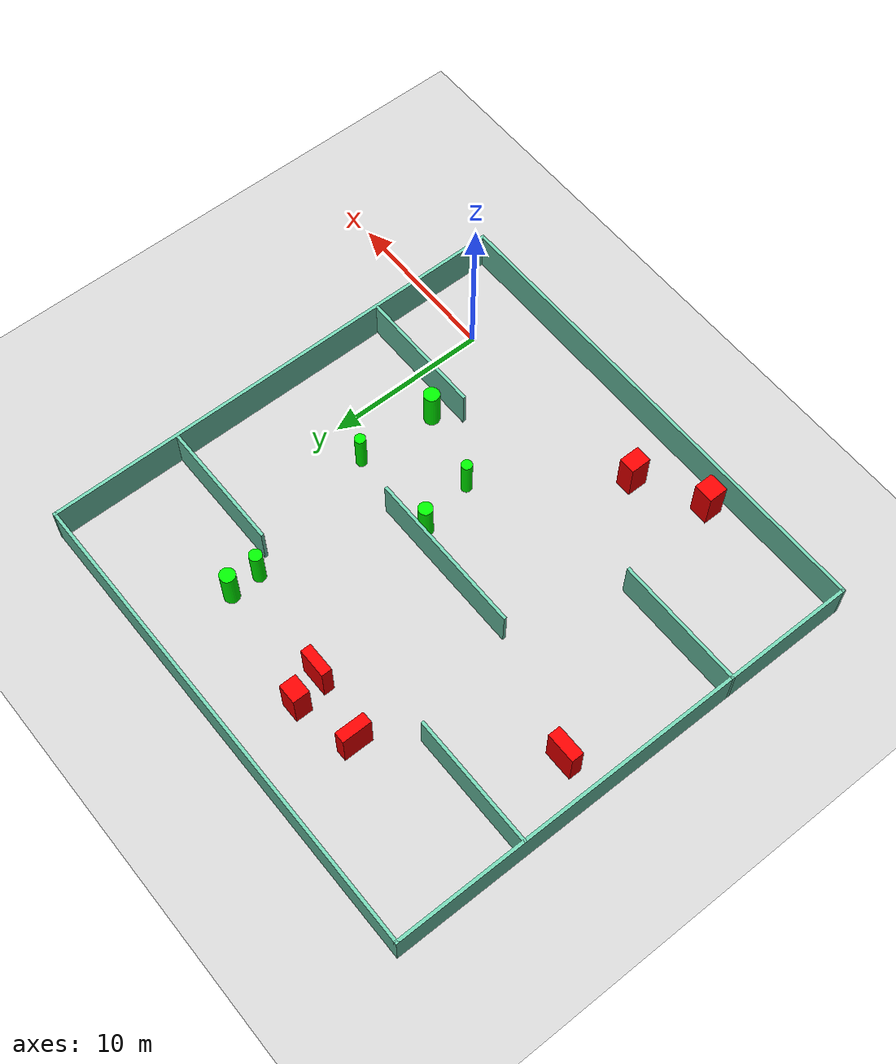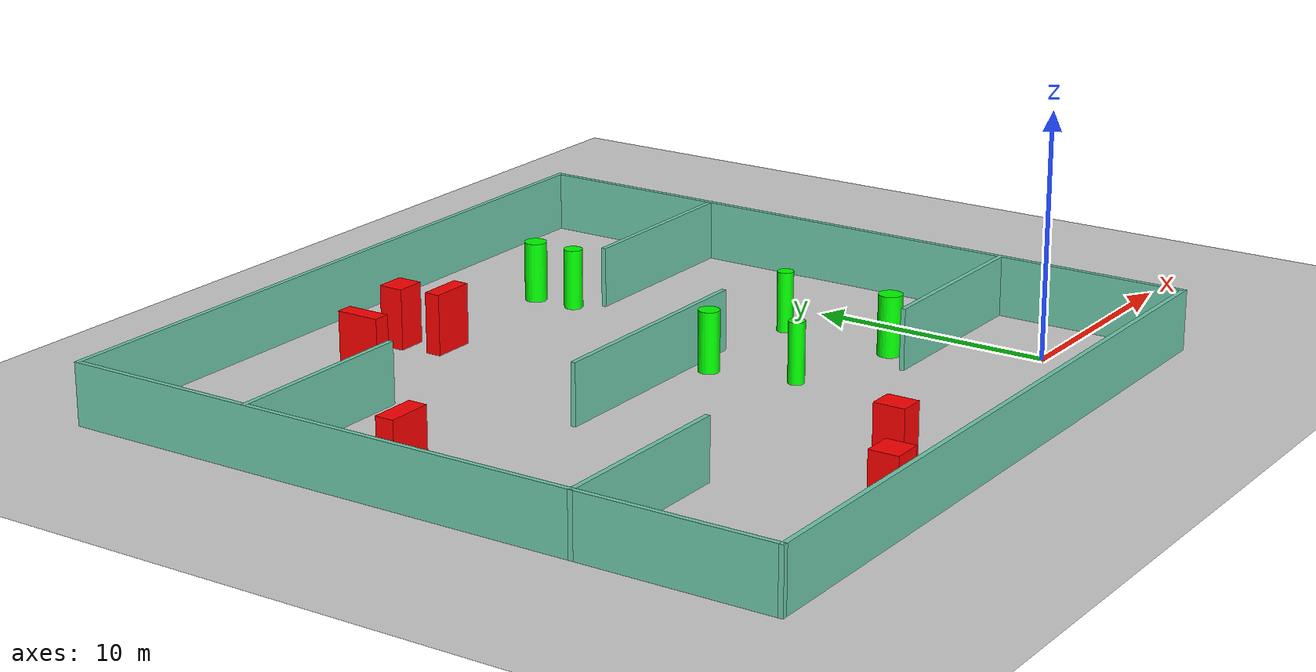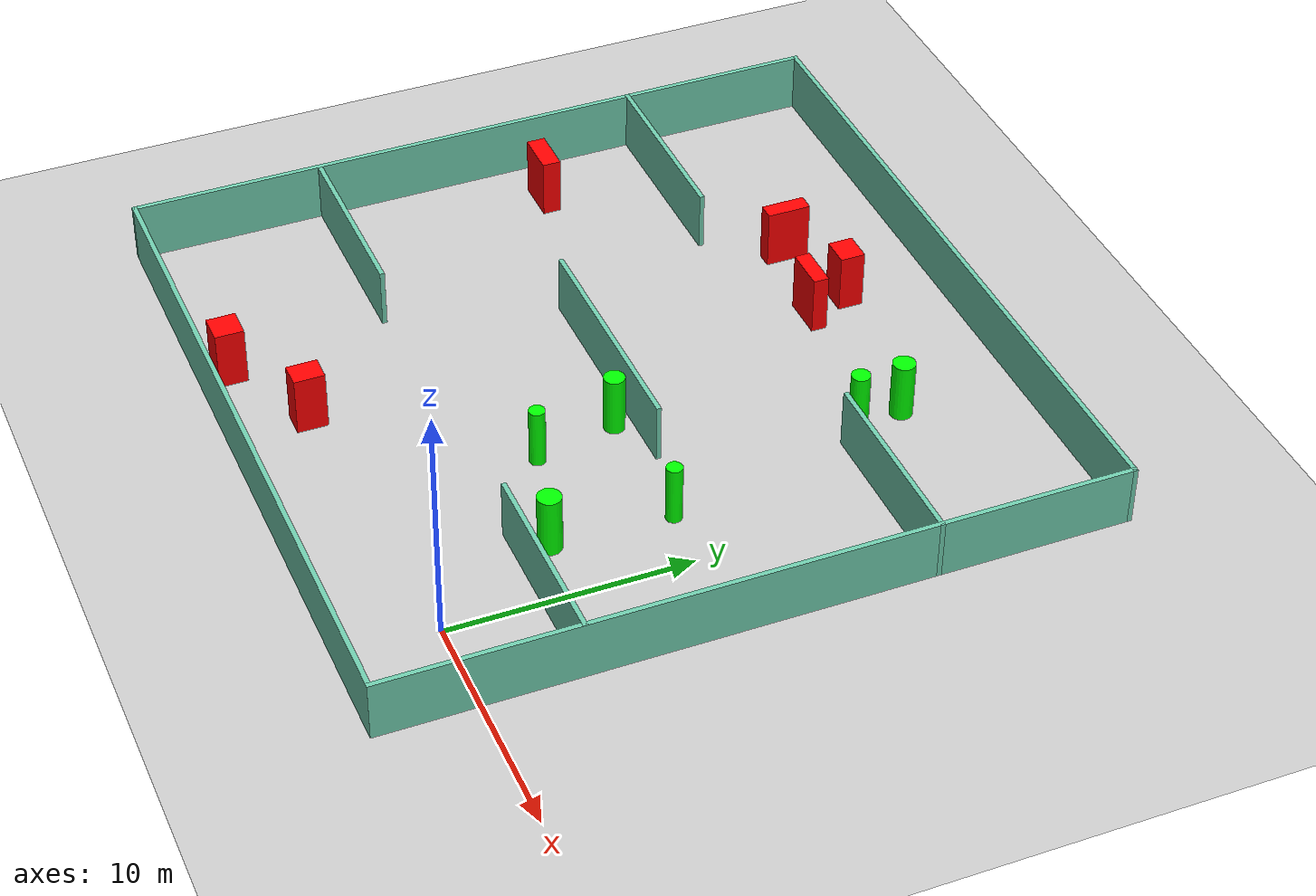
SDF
<sdf version="1.7">
 <world name="default">
  <light name="sun" type="directional">
   <pose>0 0 10 0 -0 0</pose>
   <diffuse>0.8 0.8 0.8 1</diffuse>
   <specular>0.2 0.2 0.2 1</specular>
   <attenuation>
    <range>1000</range>
    <constant>0.9</constant>
    <linear>0.01</linear>
    <quadratic>0.001</quadratic>
   </attenuation>
   <direction>-0.5 0.1 -0.9</direction>
   <spot><inner_angle>0</inner_angle><outer_angle>0</outer_angle><falloff>0</falloff></spot>
  </light>
  <model name="ground_plane">
   <static>1</static>
   <link name="link">
    <collision name="collision">
     <geometry><plane><normal>0 0 1</normal><size>100 100</size></plane></geometry>
     <surface>
      <contact><collide_bitmask>65535</collide_bitmask></contact>
      <friction><ode><mu>100</mu><mu2>50</mu2></ode></friction>
     </surface>
    </collision>
    <visual name="visual">
     <cast_shadows>0</cast_shadows>
     <geometry><plane><normal>0 0 1</normal><size>100 100</size></plane></geometry>
     <material>
      <script><uri>file://media/materials/scripts/gazebo.material</uri><name>Gazebo/Grey</name></script>
     </material>
    </visual>
   </link>
  </model>
  <gravity>0 0 -9.8</gravity>
  <magnetic_field>6e-06 2.3e-05 -4.2e-05</magnetic_field>
  <atmosphere type="adiabatic"/>
  <physics type="ode">
   <max_step_size>0.001</max_step_size>
   <real_time_factor>1</real_time_factor>
   <real_time_update_rate>1000</real_time_update_rate>
  </physics>
  <scene><ambient>0.4 0.4 0.4 1</ambient><background>0.7 0.7 0.7 1</background><shadows>1</shadows></scene>
  <spherical_coordinates>
   <surface_model>EARTH_WGS84</surface_model>
   <latitude_deg>0</latitude_deg>
   <longitude_deg>0</longitude_deg>
   <elevation>0</elevation>
   <heading_deg>0</heading_deg>
  </spherical_coordinates>
  <model name="my_base_walls">
   <link name="Wall_10">
    <collision name="Wall_10_Collision">
     <geometry><box><size>8.2 0.2 2.5</size></box></geometry>
     <pose>0 0 1.25 0 -0 0</pose>
    </collision>
    <visual name="Wall_10_Visual">
     <pose>0 0 1.25 0 -0 0</pose>
     <geometry><box><size>8.2 0.2 2.5</size></box></geometry>
     <material>
      <script><uri>file://media/materials/scripts/gazebo.material</uri><name>Gazebo/Grey</name></script>
      <ambient>0.435294 0.796078 0.67451 1</ambient>
     </material>
     <meta><layer>0</layer></meta>
    </visual>
    <pose>-11 -7 0 0 -0 0</pose>
   </link>
   <link name="Wall_12">
    <collision name="Wall_12_Collision">
     <geometry><box><size>8.2 0.2 2.5</size></box></geometry>
     <pose>0 0 1.25 0 -0 0</pose>
    </collision>
    <visual name="Wall_12_Visual">
     <pose>0 0 1.25 0 -0 0</pose>
     <geometry><box><size>8.2 0.2 2.5</size></box></geometry>
     <material>
      <script><uri>file://media/materials/scripts/gazebo.material</uri><name>Gazebo/Grey</name></script>
      <ambient>0.435294 0.796078 0.67451 1</ambient>
     </material>
     <meta><layer>0</layer></meta>
    </visual>
    <pose>-11 7 0 0 -0 0</pose>
   </link>
   <link name="Wall_14">
    <collision name="Wall_14_Collision">
     <geometry><box><size>8.2 0.2 2.5</size></box></geometry>
     <pose>0 0 1.25 0 -0 0</pose>
    </collision>
    <visual name="Wall_14_Visual">
     <pose>0 0 1.25 0 -0 0</pose>
     <geometry><box><size>8.2 0.2 2.5</size></box></geometry>
     <material>
      <script><uri>file://media/materials/scripts/gazebo.material</uri><name>Gazebo/Grey</name></script>
      <ambient>0.435294 0.796078 0.67451 1</ambient>
     </material>
     <meta><layer>0</layer></meta>
    </visual>
    <pose>11 7 0 0 -0 3.14159</pose>
   </link>
   <link name="Wall_16">
    <collision name="Wall_16_Collision">
     <geometry><box><size>10.2 0.2 2.5</size></box></geometry>
     <pose>0 0 1.25 0 -0 0</pose>
    </collision>
    <visual name="Wall_16_Visual">
     <pose>0 0 1.25 0 -0 0</pose>
     <geometry><box><size>10.2 0.2 2.5</size></box></geometry>
     <material>
      <script><uri>file://media/materials/scripts/gazebo.material</uri><name>Gazebo/Grey</name></script>
      <ambient>0.435294 0.796078 0.67451 1</ambient>
     </material>
     <meta><layer>0</layer></meta>
    </visual>
    <pose>0 0 0 0 -0 3.14159</pose>
   </link>
   <link name="Wall_2">
    <collision name="Wall_2_Collision">
     <geometry><box><size>30.2 0.2 2.5</size></box></geometry>
     <pose>0 0 1.25 0 -0 0</pose>
    </collision>
    <visual name="Wall_2_Visual">
     <pose>0 0 1.25 0 -0 0</pose>
     <geometry><box><size>30.2 0.2 2.5</size></box></geometry>
     <material>
      <script><uri>file://media/materials/scripts/gazebo.material</uri><name>Gazebo/Grey</name></script>
      <ambient>0.435294 0.796078 0.67451 1</ambient>
     </material>
     <meta><layer>0</layer></meta>
    </visual>
    <pose>0 -15 0 0 -0 3.14159</pose>
   </link>
   <link name="Wall_3">
    <collision name="Wall_3_Collision">
     <geometry><box><size>30.2 0.2 2.5</size></box></geometry>
     <pose>0 0 1.25 0 -0 0</pose>
    </collision>
    <visual name="Wall_3_Visual">
     <pose>0 0 1.25 0 -0 0</pose>
     <geometry><box><size>30.2 0.2 2.5</size></box></geometry>
     <material>
      <script><uri>file://media/materials/scripts/gazebo.material</uri><name>Gazebo/Grey</name></script>
      <ambient>0.435294 0.796078 0.67451 1</ambient>
     </material>
     <meta><layer>0</layer></meta>
    </visual>
    <pose>-15 0 0 0 -0 1.5708</pose>
   </link>
   <link name="Wall_4">
    <collision name="Wall_4_Collision">
     <geometry><box><size>30.2 0.2 2.5</size></box></geometry>
     <pose>0 0 1.25 0 -0 0</pose>
    </collision>
    <visual name="Wall_4_Visual">
     <pose>0 0 1.25 0 -0 0</pose>
     <geometry><box><size>30.2 0.2 2.5</size></box></geometry>
     <material>
      <script><uri>file://media/materials/scripts/gazebo.material</uri><name>Gazebo/Grey</name></script>
      <ambient>0.435294 0.796078 0.67451 1</ambient>
     </material>
     <meta><layer>0</layer></meta>
    </visual>
    <pose>0 15 0 0 -0 0</pose>
   </link>
   <link name="Wall_6">
    <collision name="Wall_6_Collision">
     <geometry><box><size>30.2 0.2 2.5</size></box></geometry>
     <pose>0 0 1.25 0 -0 0</pose>
    </collision>
    <visual name="Wall_6_Visual">
     <pose>0 0 1.25 0 -0 0</pose>
     <geometry><box><size>30.2 0.2 2.5</size></box></geometry>
     <material>
      <script><uri>file://media/materials/scripts/gazebo.material</uri><name>Gazebo/Grey</name></script>
      <ambient>0.435294 0.796078 0.67451 1</ambient>
     </material>
     <meta><layer>0</layer></meta>
    </visual>
    <pose>15 0 0 0 -0 1.5708</pose>
   </link>
   <link name="Wall_8">
    <collision name="Wall_8_Collision">
     <geometry><box><size>8.2 0.2 2.5</size></box></geometry>
     <pose>0 0 1.25 0 -0 0</pose>
    </collision>
    <visual name="Wall_8_Visual">
     <pose>0 0 1.25 0 -0 0</pose>
     <geometry><box><size>8.2 0.2 2.5</size></box></geometry>
     <material>
      <script><uri>file://media/materials/scripts/gazebo.material</uri><name>Gazebo/Grey</name></script>
      <ambient>0.435294 0.796078 0.67451 1</ambient>
     </material>
     <meta><layer>0</layer></meta>
    </visual>
    <pose>11 -7 0 0 -0 3.14159</pose>
   </link>
   <static>1</static>
   <pose>-11 11 0 0 -0 0</pose>
  </model>
  <model name="cylinder1">
   <static>1</static>
   <link name="link">
    <inertial>
     <mass>1</mass>
     <inertia><ixx>0.5</ixx><ixy>0</ixy><ixz>0</ixz><iyy>0.5</iyy><iyz>0</iyz><izz>1</izz></inertia>
    </inertial>
    <collision name="collision">
     <geometry><cylinder><radius>0.430714673135869</radius><length>2.5</length></cylinder></geometry>
    </collision>
    <visual name="visual">
     <geometry><cylinder><radius>0.430714673135869</radius><length>2.5</length></cylinder></geometry>
     <material>
      <ambient>0 1 0 1</ambient>
      <diffuse>0 1 0 1</diffuse>
      <specular>0.1 0.1 0.1 1</specular>
      <emissive>0 0 0 0</emissive>
     </material>
    </visual>
   </link>
   <pose>-8.296325689861483 10.142618996675436 1.25 0 0 0</pose>
  </model>
  <model name="cylinder2">
   <static>1</static>
   <link name="link">
    <inertial>
     <mass>1</mass>
     <inertia><ixx>0.5</ixx><ixy>0</ixy><ixz>0</ixz><iyy>0.5</iyy><iyz>0</iyz><izz>1</izz></inertia>
    </inertial>
    <collision name="collision">
     <geometry><cylinder><radius>0.3901224387275069</radius><length>2.5</length></cylinder></geometry>
    </collision>
    <visual name="visual">
     <geometry><cylinder><radius>0.3901224387275069</radius><length>2.5</length></cylinder></geometry>
     <material>
      <ambient>0 1 0 1</ambient>
      <diffuse>0 1 0 1</diffuse>
      <specular>0.1 0.1 0.1 1</specular>
      <emissive>0 0 0 0</emissive>
     </material>
    </visual>
   </link>
   <pose>-4.836688452153972 19.006875782045817 1.25 0 0 0</pose>
  </model>
  <model name="cylinder3">
   <static>1</static>
   <link name="link">
    <inertial>
     <mass>1</mass>
     <inertia><ixx>0.5</ixx><ixy>0</ixy><ixz>0</ixz><iyy>0.5</iyy><iyz>0</iyz><izz>1</izz></inertia>
    </inertial>
    <collision name="collision">
     <geometry><cylinder><radius>0.3314901832001767</radius><length>2.5</length></cylinder></geometry>
    </collision>
    <visual name="visual">
     <geometry><cylinder><radius>0.3314901832001767</radius><length>2.5</length></cylinder></geometry>
     <material>
      <ambient>0 1 0 1</ambient>
      <diffuse>0 1 0 1</diffuse>
      <specular>0.1 0.1 0.1 1</specular>
      <emissive>0 0 0 0</emissive>
     </material>
    </visual>
   </link>
   <pose>-7.561499227406589 6.6560649441408515 1.25 0 0 0</pose>
  </model>
  <model name="cylinder4">
   <static>1</static>
   <link name="link">
    <inertial>
     <mass>1</mass>
     <inertia><ixx>0.5</ixx><ixy>0</ixy><ixz>0</ixz><iyy>0.5</iyy><iyz>0</iyz><izz>1</izz></inertia>
    </inertial>
    <collision name="collision">
     <geometry><cylinder><radius>0.3310916273674503</radius><length>2.5</length></cylinder></geometry>
    </collision>
    <visual name="visual">
     <geometry><cylinder><radius>0.3310916273674503</radius><length>2.5</length></cylinder></geometry>
     <material>
      <ambient>0 1 0 1</ambient>
      <diffuse>0 1 0 1</diffuse>
      <specular>0.1 0.1 0.1 1</specular>
      <emissive>0 0 0 0</emissive>
     </material>
    </visual>
   </link>
   <pose>-2.5508055192794075 10.215665687131304 1.25 0 0 0</pose>
  </model>
  <model name="cylinder5">
   <static>1</static>
   <link name="link">
    <inertial>
     <mass>1</mass>
     <inertia><ixx>0.5</ixx><ixy>0</ixy><ixz>0</ixz><iyy>0.5</iyy><iyz>0</iyz><izz>1</izz></inertia>
    </inertial>
    <collision name="collision">
     <geometry><cylinder><radius>0.46626308848923737</radius><length>2.5</length></cylinder></geometry>
    </collision>
    <visual name="visual">
     <geometry><cylinder><radius>0.46626308848923737</radius><length>2.5</length></cylinder></geometry>
     <material>
      <ambient>0 1 0 1</ambient>
      <diffuse>0 1 0 1</diffuse>
      <specular>0.1 0.1 0.1 1</specular>
      <emissive>0 0 0 0</emissive>
     </material>
    </visual>
   </link>
   <pose>-4.872039094102641 20.877180428344552 1.25 0 0 0</pose>
  </model>
  <model name="cylinder6">
   <static>1</static>
   <link name="link">
    <inertial>
     <mass>1</mass>
     <inertia><ixx>0.5</ixx><ixy>0</ixy><ixz>0</ixz><iyy>0.5</iyy><iyz>0</iyz><izz>1</izz></inertia>
    </inertial>
    <collision name="collision">
     <geometry><cylinder><radius>0.4862980631799697</radius><length>2.5</length></cylinder></geometry>
    </collision>
    <visual name="visual">
     <geometry><cylinder><radius>0.4862980631799697</radius><length>2.5</length></cylinder></geometry>
     <material>
      <ambient>0 1 0 1</ambient>
      <diffuse>0 1 0 1</diffuse>
      <specular>0.1 0.1 0.1 1</specular>
      <emissive>0 0 0 0</emissive>
     </material>
    </visual>
   </link>
   <pose>-2.7601442058825576 5.297071369609027 1.25 0 0 0</pose>
  </model>
  <model name="box1">
   <static>1</static>
   <link name="link">
    <inertial>
     <mass>1</mass>
     <inertia><ixx>0.083</ixx><ixy>0</ixy><ixz>0</ixz><iyy>0.083</iyy><iyz>0</iyz><izz>0.083</izz></inertia>
    </inertial>
    <collision name="collision">
     <geometry><box><size>1.8367462959910017 0.6516578244023351 2.5</size></box></geometry>
    </collision>
    <visual name="visual">
     <geometry><box><size>1.8367462959910017 0.6516578244023351 2.5</size></box></geometry>
     <material>
      <ambient>1 0 0 1</ambient>
      <diffuse>1 0 0 1</diffuse>
      <specular>0.1 0.1 0.1 1</specular>
      <emissive>0 0 0 0</emissive>
     </material>
    </visual>
    <sensor name="my_contact" type="contact">
     <contact><collision>box_collision</collision><topic>__default_topic__</topic></contact>
    </sensor>
   </link>
   <pose>-11.788932078315728 20.156538149235104 1.25 0 0 0</pose>
  </model>
  <model name="box2">
   <static>1</static>
   <link name="link">
    <inertial>
     <mass>1</mass>
     <inertia><ixx>0.083</ixx><ixy>0</ixy><ixz>0</ixz><iyy>0.083</iyy><iyz>0</iyz><izz>0.083</izz></inertia>
    </inertial>
    <collision name="collision">
     <geometry><box><size>1.0386812272232604 1.277023754170182 2.5</size></box></geometry>
    </collision>
    <visual name="visual">
     <geometry><box><size>1.0386812272232604 1.277023754170182 2.5</size></box></geometry>
     <material>
      <ambient>1 0 0 1</ambient>
      <diffuse>1 0 0 1</diffuse>
      <specular>0.1 0.1 0.1 1</specular>
      <emissive>0 0 0 0</emissive>
     </material>
    </visual>
    <sensor name="my_contact" type="contact">
     <contact><collision>box_collision</collision><topic>__default_topic__</topic></contact>
    </sensor>
   </link>
   <pose>-13.127452932144553 -0.7646179055474311 1.25 0 0 0</pose>
  </model>
  <model name="box3">
   <static>1</static>
   <link name="link">
    <inertial>
     <mass>1</mass>
     <inertia><ixx>0.083</ixx><ixy>0</ixy><ixz>0</ixz><iyy>0.083</iyy><iyz>0</iyz><izz>0.083</izz></inertia>
    </inertial>
    <collision name="collision">
     <geometry><box><size>0.693406082511048 1.840372600872986 2.5</size></box></geometry>
    </collision>
    <visual name="visual">
     <geometry><box><size>0.693406082511048 1.840372600872986 2.5</size></box></geometry>
     <material>
      <ambient>1 0 0 1</ambient>
      <diffuse>1 0 0 1</diffuse>
      <specular>0.1 0.1 0.1 1</specular>
      <emissive>0 0 0 0</emissive>
     </material>
    </visual>
    <sensor name="my_contact" type="contact">
     <contact><collision>box_collision</collision><topic>__default_topic__</topic></contact>
    </sensor>
   </link>
   <pose>-15.96258107551039 20.93223834700572 1.25 0 0 0</pose>
  </model>
  <model name="box4">
   <static>1</static>
   <link name="link">
    <inertial>
     <mass>1</mass>
     <inertia><ixx>0.083</ixx><ixy>0</ixy><ixz>0</ixz><iyy>0.083</iyy><iyz>0</iyz><izz>0.083</izz></inertia>
    </inertial>
    <collision name="collision">
     <geometry><box><size>1.2245849829576776 1.1981284754560966 2.5</size></box></geometry>
    </collision>
    <visual name="visual">
     <geometry><box><size>1.2245849829576776 1.1981284754560966 2.5</size></box></geometry>
     <material>
      <ambient>1 0 0 1</ambient>
      <diffuse>1 0 0 1</diffuse>
      <specular>0.1 0.1 0.1 1</specular>
      <emissive>0 0 0 0</emissive>
     </material>
    </visual>
    <sensor name="my_contact" type="contact">
     <contact><collision>box_collision</collision><topic>__default_topic__</topic></contact>
    </sensor>
   </link>
   <pose>-17.049098122257032 -2.81379113651698 1.25 0 0 0</pose>
  </model>
  <model name="box5">
   <static>1</static>
   <link name="link">
    <inertial>
     <mass>1</mass>
     <inertia><ixx>0.083</ixx><ixy>0</ixy><ixz>0</ixz><iyy>0.083</iyy><iyz>0</iyz><izz>0.083</izz></inertia>
    </inertial>
    <collision name="collision">
     <geometry><box><size>1.872227752955663 0.7743093998621794 2.5</size></box></geometry>
    </collision>
    <visual name="visual">
     <geometry><box><size>1.872227752955663 0.7743093998621794 2.5</size></box></geometry>
     <material>
      <ambient>1 0 0 1</ambient>
      <diffuse>1 0 0 1</diffuse>
      <specular>0.1 0.1 0.1 1</specular>
      <emissive>0 0 0 0</emissive>
     </material>
    </visual>
    <sensor name="my_contact" type="contact">
     <contact><collision>box_collision</collision><topic>__default_topic__</topic></contact>
    </sensor>
   </link>
   <pose>-23.415608492962164 13.094970014128293 1.25 0 0 0</pose>
  </model>
  <model name="box6">
   <static>1</static>
   <link name="link">
    <inertial>
     <mass>1</mass>
     <inertia><ixx>0.083</ixx><ixy>0</ixy><ixz>0</ixz><iyy>0.083</iyy><iyz>0</iyz><izz>0.083</izz></inertia>
    </inertial>
    <collision name="collision">
     <geometry><box><size>1.2221107151545003 1.0447579448951407 2.5</size></box></geometry>
    </collision>
    <visual name="visual">
     <geometry><box><size>1.2221107151545003 1.0447579448951407 2.5</size></box></geometry>
     <material>
      <ambient>1 0 0 1</ambient>
      <diffuse>1 0 0 1</diffuse>
      <specular>0.1 0.1 0.1 1</specular>
      <emissive>0 0 0 0</emissive>
     </material>
    </visual>
    <sensor name="my_contact" type="contact">
     <contact><collision>box_collision</collision><topic>__default_topic__</topic></contact>
    </sensor>
   </link>
   <pose>-12.376482661048307 21.990779923975524 1.25 0 0 0</pose>
  </model>
 </world>
</sdf>
